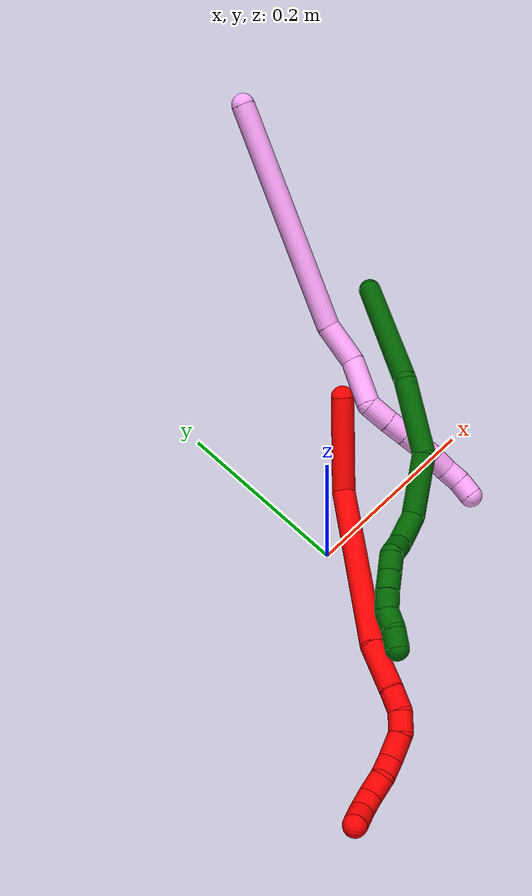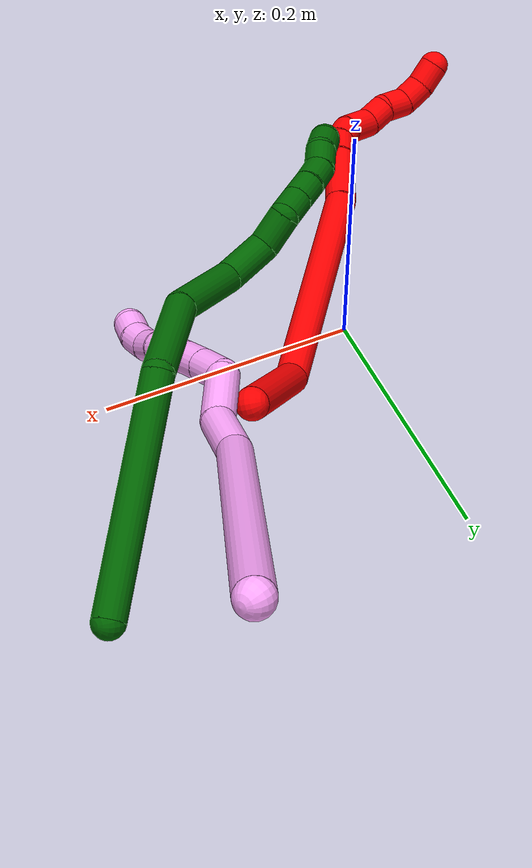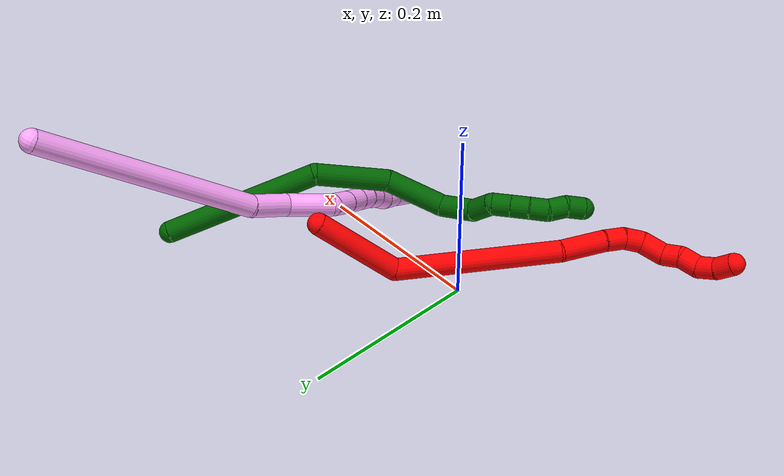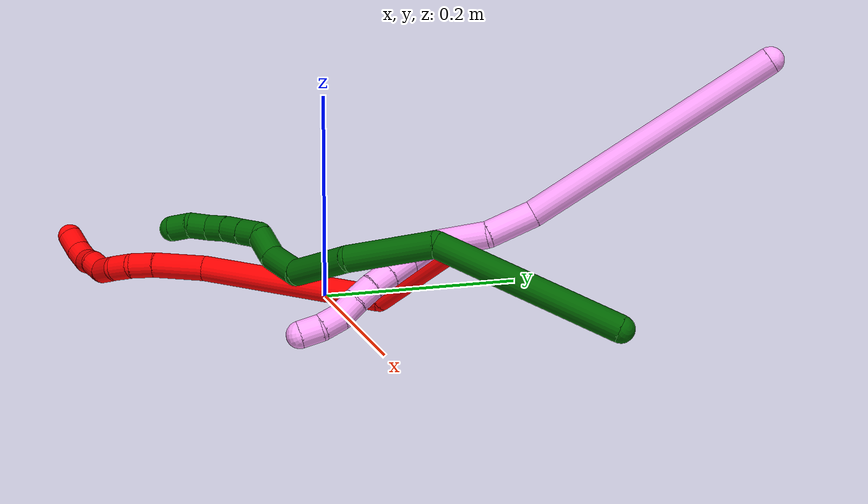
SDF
<sdf version="1.7">
 <world name="default">
  <model name="photoneo_s_sensor">
   <static>1</static>
   <pose>0 0 2 1.57079 1.57079 3.14159</pose>
   <link name="link">
    <inertial><mass>0.1</mass></inertial>
    <sensor name="sensor" type="depth">
     <update_rate>30</update_rate>
     <camera>
      <horizontal_fov>1.22</horizontal_fov>
      <image><width>1920</width><height>1200</height><format>B8G8R8</format></image>
      <clip><near>0.1</near><far>4</far></clip>
      <depth_camera><output>points</output></depth_camera>
     </camera>
     <plugin name="camera_plugin" filename="libgazebo_ros_depth_camera.so">
      <baseline>0.2</baseline>
      <alwaysOn>1</alwaysOn>
      <updateRate>0.0</updateRate>
      <cameraName>camera_ir</cameraName>
      <imageTopicName>/camera/color/image_raw</imageTopicName>
      <cameraInfoTopicName>/camera/color/camera_info</cameraInfoTopicName>
      <depthImageTopicName>/camera/depth/image_raw</depthImageTopicName>
      <depthImageCameraInfoTopicName>/camera/depth/camera_info</depthImageCameraInfoTopicName>
      <pointCloudTopicName>/camera/depth/points</pointCloudTopicName>
      <frameName>fr_optical</frameName>
      <pointCloudCutoff>0.1</pointCloudCutoff>
      <pointCloudCutoffMax>2.0</pointCloudCutoffMax>
      <distortionK1>0</distortionK1>
      <distortionK2>0</distortionK2>
      <distortionK3>0</distortionK3>
      <distortionT1>0</distortionT1>
      <distortionT2>0</distortionT2>
      <CxPrime>0</CxPrime>
      <Cx>0</Cx>
      <Cy>0</Cy>
      <focalLength>0</focalLength>
      <hackBaseline>0</hackBaseline>
     </plugin>
    </sensor>
   </link>
  </model>
  <model name="bin">
   <static>1</static>
   <link name="bottom">
    <collision name="collision-bottom">
     <pose>0 0 -0.01 0 -0 0</pose>
     <geometry><box><size>0.8 0.6 0.02</size></box></geometry>
     <surface>
      <friction><ode><mu>100</mu><mu2>100</mu2></ode></friction>
      <contact><collide_bitmask>65535</collide_bitmask></contact>
     </surface>
    </collision>
   </link>
   <link name="west_wall">
    <collision name="collision-west_wall">
     <pose>-0.41 0 0.1 0 -0 0</pose>
     <geometry><box><size>0.02 0.6 0.2</size></box></geometry>
     <surface>
      <friction><ode><mu>100</mu><mu2>100</mu2></ode></friction>
      <contact><collide_bitmask>65535</collide_bitmask></contact>
     </surface>
    </collision>
   </link>
   <link name="east_wall">
    <collision name="collision-east_wall">
     <pose>0.41 0 0.1 0 -0 0</pose>
     <geometry><box><size>0.02 0.6 0.2</size></box></geometry>
     <surface>
      <friction><ode><mu>100</mu><mu2>100</mu2></ode></friction>
      <contact><collide_bitmask>65535</collide_bitmask></contact>
     </surface>
    </collision>
   </link>
   <link name="south_wall">
    <collision name="collision-south_wall">
     <pose>0 -0.31 0.1 0 -0 0</pose>
     <geometry><box><size>0.8 0.02 0.2</size></box></geometry>
     <surface>
      <friction><ode><mu>100</mu><mu2>100</mu2></ode></friction>
      <contact><collide_bitmask>65535</collide_bitmask></contact>
     </surface>
    </collision>
   </link>
   <link name="north_wall">
    <collision name="collision-north_wall">
     <pose>0 0.31 0.1 0 -0 0</pose>
     <geometry><box><size>0.8 0.02 0.2</size></box></geometry>
     <surface>
      <friction><ode><mu>100</mu><mu2>100</mu2></ode></friction>
      <contact><collide_bitmask>65535</collide_bitmask></contact>
     </surface>
    </collision>
   </link>
  </model>
  <model name="2">
   <static>0</static>
   <link name="2">
    <collision name="collision-cylinder-e_1_1_4">
     <pose>-0.006776 -0.050762 0.006327 1.44679 -0.13169 -0.116331</pose>
     <geometry><cylinder><radius>0.0125</radius><length>0.103202</length></cylinder></geometry>
     <surface>
      <friction><ode><mu>1.16</mu><mu2>1.16</mu2><slip1>0</slip1><slip2>0</slip2></ode></friction>
      <contact><ode><kp>1e+06</kp><kd>1</kd><max_vel>0</max_vel><min_depth>0.001</min_depth></ode></contact>
     </surface>
    </collision>
    <visual name="visual-cylinder-e_1_1_4">
     <pose>-0.006776 -0.050762 0.006327 1.44679 -0.13169 -0.116331</pose>
     <geometry><cylinder><radius>0.0125</radius><length>0.103202</length></cylinder></geometry>
     <material><ambient>1 0 0 1</ambient></material>
    </visual>
    <collision name="collision-cylinder-e_2_4_5">
     <pose>-0.082125 -0.163801 0.004643 1.69874 -0.829389 -0.928073</pose>
     <geometry><cylinder><radius>0.0125</radius><length>0.185957</length></cylinder></geometry>
     <surface>
      <friction><ode><mu>1.16</mu><mu2>1.16</mu2><slip1>0</slip1><slip2>0</slip2></ode></friction>
      <contact><ode><kp>1e+06</kp><kd>1</kd><max_vel>0</max_vel><min_depth>0.001</min_depth></ode></contact>
     </surface>
    </collision>
    <visual name="visual-cylinder-e_2_4_5">
     <pose>-0.082125 -0.163801 0.004643 1.69874 -0.829389 -0.928073</pose>
     <geometry><cylinder><radius>0.0125</radius><length>0.185957</length></cylinder></geometry>
     <material><ambient>1 0 0 1</ambient></material>
    </visual>
    <collision name="collision-cylinder-e_3_5_6">
     <pose>-0.170651 -0.242065 -0.000107 1.36953 -0.885347 -0.738665</pose>
     <geometry><cylinder><radius>0.0125</radius><length>0.051549</length></cylinder></geometry>
     <surface>
      <friction><ode><mu>1.16</mu><mu2>1.16</mu2><slip1>0</slip1><slip2>0</slip2></ode></friction>
      <contact><ode><kp>1e+06</kp><kd>1</kd><max_vel>0</max_vel><min_depth>0.001</min_depth></ode></contact>
     </surface>
    </collision>
    <visual name="visual-cylinder-e_3_5_6">
     <pose>-0.170651 -0.242065 -0.000107 1.36953 -0.885347 -0.738665</pose>
     <geometry><cylinder><radius>0.0125</radius><length>0.051549</length></cylinder></geometry>
     <material><ambient>1 0 0 1</ambient></material>
    </visual>
    <collision name="collision-cylinder-e_4_6_7">
     <pose>-0.198916 -0.266351 0.005111 1.33925 -0.772568 -0.622986</pose>
     <geometry><cylinder><radius>0.0125</radius><length>0.023816</length></cylinder></geometry>
     <surface>
      <friction><ode><mu>1.16</mu><mu2>1.16</mu2><slip1>0</slip1><slip2>0</slip2></ode></friction>
      <contact><ode><kp>1e+06</kp><kd>1</kd><max_vel>0</max_vel><min_depth>0.001</min_depth></ode></contact>
     </surface>
    </collision>
    <visual name="visual-cylinder-e_4_6_7">
     <pose>-0.198916 -0.266351 0.005111 1.33925 -0.772568 -0.622986</pose>
     <geometry><cylinder><radius>0.0125</radius><length>0.023816</length></cylinder></geometry>
     <material><ambient>1 0 0 1</ambient></material>
    </visual>
    <collision name="collision-cylinder-e_5_7_8">
     <pose>-0.212407 -0.284014 0.006461 1.63559 -0.504425 -0.536664</pose>
     <geometry><cylinder><radius>0.0125</radius><length>0.021435</length></cylinder></geometry>
     <surface>
      <friction><ode><mu>1.16</mu><mu2>1.16</mu2><slip1>0</slip1><slip2>0</slip2></ode></friction>
      <contact><ode><kp>1e+06</kp><kd>1</kd><max_vel>0</max_vel><min_depth>0.001</min_depth></ode></contact>
     </surface>
    </collision>
    <visual name="visual-cylinder-e_5_7_8">
     <pose>-0.212407 -0.284014 0.006461 1.63559 -0.504425 -0.536664</pose>
     <geometry><cylinder><radius>0.0125</radius><length>0.021435</length></cylinder></geometry>
     <material><ambient>1 0 0 1</ambient></material>
    </visual>
    <collision name="collision-cylinder-e_6_8_9">
     <pose>-0.220499 -0.306044 0.000545 1.96766 -0.208913 -0.312651</pose>
     <geometry><cylinder><radius>0.0125</radius><length>0.028078</length></cylinder></geometry>
     <surface>
      <friction><ode><mu>1.16</mu><mu2>1.16</mu2><slip1>0</slip1><slip2>0</slip2></ode></friction>
      <contact><ode><kp>1e+06</kp><kd>1</kd><max_vel>0</max_vel><min_depth>0.001</min_depth></ode></contact>
     </surface>
    </collision>
    <visual name="visual-cylinder-e_6_8_9">
     <pose>-0.220499 -0.306044 0.000545 1.96766 -0.208913 -0.312651</pose>
     <geometry><cylinder><radius>0.0125</radius><length>0.028078</length></cylinder></geometry>
     <material><ambient>1 0 0 1</ambient></material>
    </visual>
    <collision name="collision-cylinder-e_7_9_10">
     <pose>-0.228805 -0.324906 -0.01106 2.36417 -0.54821 -1.20331</pose>
     <geometry><cylinder><radius>0.0125</radius><length>0.020702</length></cylinder></geometry>
     <surface>
      <friction><ode><mu>1.16</mu><mu2>1.16</mu2><slip1>0</slip1><slip2>0</slip2></ode></friction>
      <contact><ode><kp>1e+06</kp><kd>1</kd><max_vel>0</max_vel><min_depth>0.001</min_depth></ode></contact>
     </surface>
    </collision>
    <visual name="visual-cylinder-e_7_9_10">
     <pose>-0.228805 -0.324906 -0.01106 2.36417 -0.54821 -1.20331</pose>
     <geometry><cylinder><radius>0.0125</radius><length>0.020702</length></cylinder></geometry>
     <material><ambient>1 0 0 1</ambient></material>
    </visual>
    <collision name="collision-cylinder-e_8_10_11">
     <pose>-0.236248 -0.339937 -0.023804 2.20128 -0.185183 -0.361473</pose>
     <geometry><cylinder><radius>0.0125</radius><length>0.022255</length></cylinder></geometry>
     <surface>
      <friction><ode><mu>1.16</mu><mu2>1.16</mu2><slip1>0</slip1><slip2>0</slip2></ode></friction>
      <contact><ode><kp>1e+06</kp><kd>1</kd><max_vel>0</max_vel><min_depth>0.001</min_depth></ode></contact>
     </surface>
    </collision>
    <visual name="visual-cylinder-e_8_10_11">
     <pose>-0.236248 -0.339937 -0.023804 2.20128 -0.185183 -0.361473</pose>
     <geometry><cylinder><radius>0.0125</radius><length>0.022255</length></cylinder></geometry>
     <material><ambient>1 0 0 1</ambient></material>
    </visual>
    <collision name="collision-cylinder-e_9_11_12">
     <pose>-0.244164 -0.353996 -0.037488 2.51622 -0.581523 -1.49357</pose>
     <geometry><cylinder><radius>0.0125</radius><length>0.021362</length></cylinder></geometry>
     <surface>
      <friction><ode><mu>1.16</mu><mu2>1.16</mu2><slip1>0</slip1><slip2>0</slip2></ode></friction>
      <contact><ode><kp>1e+06</kp><kd>1</kd><max_vel>0</max_vel><min_depth>0.001</min_depth></ode></contact>
     </surface>
    </collision>
    <visual name="visual-cylinder-e_9_11_12">
     <pose>-0.244164 -0.353996 -0.037488 2.51622 -0.581523 -1.49357</pose>
     <geometry><cylinder><radius>0.0125</radius><length>0.021362</length></cylinder></geometry>
     <material><ambient>1 0 0 1</ambient></material>
    </visual>
    <collision name="collision-cylinder-e_10_12_2">
     <pose>-0.257864 -0.361658 -0.051782 2.80914 -0.809352 -2.39493</pose>
     <geometry><cylinder><radius>0.0125</radius><length>0.021645</length></cylinder></geometry>
     <surface>
      <friction><ode><mu>1.16</mu><mu2>1.16</mu2><slip1>0</slip1><slip2>0</slip2></ode></friction>
      <contact><ode><kp>1e+06</kp><kd>1</kd><max_vel>0</max_vel><min_depth>0.001</min_depth></ode></contact>
     </surface>
    </collision>
    <visual name="visual-cylinder-e_10_12_2">
     <pose>-0.257864 -0.361658 -0.051782 2.80914 -0.809352 -2.39493</pose>
     <geometry><cylinder><radius>0.0125</radius><length>0.021645</length></cylinder></geometry>
     <material><ambient>1 0 0 1</ambient></material>
    </visual>
    <collision name="collision-sphere-2">
     <pose>-0.265698 -0.364095 -0.05884 0 -0 0</pose>
     <geometry><sphere><radius>0.0125</radius></sphere></geometry>
     <surface>
      <friction><ode><mu>1.16</mu><mu2>1.16</mu2><slip1>0</slip1><slip2>0</slip2></ode></friction>
      <contact><ode><kp>1e+06</kp><kd>1</kd><max_vel>0</max_vel><min_depth>0.001</min_depth></ode></contact>
     </surface>
    </collision>
    <visual name="visual-sphere-2">
     <pose>-0.265698 -0.364095 -0.05884 0 -0 0</pose>
     <geometry><sphere><radius>0.0125</radius></sphere></geometry>
     <material><ambient>1 0 0 1</ambient></material>
    </visual>
    <collision name="collision-sphere-12">
     <pose>-0.250031 -0.359221 -0.044724 0 -0 0</pose>
     <geometry><sphere><radius>0.0125</radius></sphere></geometry>
     <surface>
      <friction><ode><mu>1.16</mu><mu2>1.16</mu2><slip1>0</slip1><slip2>0</slip2></ode></friction>
      <contact><ode><kp>1e+06</kp><kd>1</kd><max_vel>0</max_vel><min_depth>0.001</min_depth></ode></contact>
     </surface>
    </collision>
    <visual name="visual-sphere-12">
     <pose>-0.250031 -0.359221 -0.044724 0 -0 0</pose>
     <geometry><sphere><radius>0.0125</radius></sphere></geometry>
     <material><ambient>1 0 0 1</ambient></material>
    </visual>
    <collision name="collision-sphere-11">
     <pose>-0.238297 -0.348772 -0.030252 0 -0 0</pose>
     <geometry><sphere><radius>0.0125</radius></sphere></geometry>
     <surface>
      <friction><ode><mu>1.16</mu><mu2>1.16</mu2><slip1>0</slip1><slip2>0</slip2></ode></friction>
      <contact><ode><kp>1e+06</kp><kd>1</kd><max_vel>0</max_vel><min_depth>0.001</min_depth></ode></contact>
     </surface>
    </collision>
    <visual name="visual-sphere-11">
     <pose>-0.238297 -0.348772 -0.030252 0 -0 0</pose>
     <geometry><sphere><radius>0.0125</radius></sphere></geometry>
     <material><ambient>1 0 0 1</ambient></material>
    </visual>
    <collision name="collision-sphere-10">
     <pose>-0.234199 -0.331103 -0.017356 0 -0 0</pose>
     <geometry><sphere><radius>0.0125</radius></sphere></geometry>
     <surface>
      <friction><ode><mu>1.16</mu><mu2>1.16</mu2><slip1>0</slip1><slip2>0</slip2></ode></friction>
      <contact><ode><kp>1e+06</kp><kd>1</kd><max_vel>0</max_vel><min_depth>0.001</min_depth></ode></contact>
     </surface>
    </collision>
    <visual name="visual-sphere-10">
     <pose>-0.234199 -0.331103 -0.017356 0 -0 0</pose>
     <geometry><sphere><radius>0.0125</radius></sphere></geometry>
     <material><ambient>1 0 0 1</ambient></material>
    </visual>
    <collision name="collision-sphere-9">
     <pose>-0.22341 -0.31871 -0.004764 0 -0 0</pose>
     <geometry><sphere><radius>0.0125</radius></sphere></geometry>
     <surface>
      <friction><ode><mu>1.16</mu><mu2>1.16</mu2><slip1>0</slip1><slip2>0</slip2></ode></friction>
      <contact><ode><kp>1e+06</kp><kd>1</kd><max_vel>0</max_vel><min_depth>0.001</min_depth></ode></contact>
     </surface>
    </collision>
    <visual name="visual-sphere-9">
     <pose>-0.22341 -0.31871 -0.004764 0 -0 0</pose>
     <geometry><sphere><radius>0.0125</radius></sphere></geometry>
     <material><ambient>1 0 0 1</ambient></material>
    </visual>
    <collision name="collision-sphere-4">
     <pose>-0.013551 -0.101523 0.012655 0 -0 0</pose>
     <geometry><sphere><radius>0.0125</radius></sphere></geometry>
     <surface>
      <friction><ode><mu>1.16</mu><mu2>1.16</mu2><slip1>0</slip1><slip2>0</slip2></ode></friction>
      <contact><ode><kp>1e+06</kp><kd>1</kd><max_vel>0</max_vel><min_depth>0.001</min_depth></ode></contact>
     </surface>
    </collision>
    <visual name="visual-sphere-4">
     <pose>-0.013551 -0.101523 0.012655 0 -0 0</pose>
     <geometry><sphere><radius>0.0125</radius></sphere></geometry>
     <material><ambient>1 0 0 1</ambient></material>
    </visual>
    <collision name="collision-sphere-1">
     <geometry><sphere><radius>0.0125</radius></sphere></geometry>
     <surface>
      <friction><ode><mu>1.16</mu><mu2>1.16</mu2><slip1>0</slip1><slip2>0</slip2></ode></friction>
      <contact><ode><kp>1e+06</kp><kd>1</kd><max_vel>0</max_vel><min_depth>0.001</min_depth></ode></contact>
     </surface>
    </collision>
    <visual name="visual-sphere-1">
     <geometry><sphere><radius>0.0125</radius></sphere></geometry>
     <material><ambient>1 0 0 1</ambient></material>
    </visual>
    <collision name="collision-sphere-8">
     <pose>-0.217587 -0.293378 0.005853 0 -0 0</pose>
     <geometry><sphere><radius>0.0125</radius></sphere></geometry>
     <surface>
      <friction><ode><mu>1.16</mu><mu2>1.16</mu2><slip1>0</slip1><slip2>0</slip2></ode></friction>
      <contact><ode><kp>1e+06</kp><kd>1</kd><max_vel>0</max_vel><min_depth>0.001</min_depth></ode></contact>
     </surface>
    </collision>
    <visual name="visual-sphere-8">
     <pose>-0.217587 -0.293378 0.005853 0 -0 0</pose>
     <geometry><sphere><radius>0.0125</radius></sphere></geometry>
     <material><ambient>1 0 0 1</ambient></material>
    </visual>
    <collision name="collision-sphere-5">
     <pose>-0.150698 -0.226078 -0.003369 0 -0 0</pose>
     <geometry><sphere><radius>0.0125</radius></sphere></geometry>
     <surface>
      <friction><ode><mu>1.16</mu><mu2>1.16</mu2><slip1>0</slip1><slip2>0</slip2></ode></friction>
      <contact><ode><kp>1e+06</kp><kd>1</kd><max_vel>0</max_vel><min_depth>0.001</min_depth></ode></contact>
     </surface>
    </collision>
    <visual name="visual-sphere-5">
     <pose>-0.150698 -0.226078 -0.003369 0 -0 0</pose>
     <geometry><sphere><radius>0.0125</radius></sphere></geometry>
     <material><ambient>1 0 0 1</ambient></material>
    </visual>
    <collision name="collision-sphere-6">
     <pose>-0.190604 -0.258051 0.003154 0 -0 0</pose>
     <geometry><sphere><radius>0.0125</radius></sphere></geometry>
     <surface>
      <friction><ode><mu>1.16</mu><mu2>1.16</mu2><slip1>0</slip1><slip2>0</slip2></ode></friction>
      <contact><ode><kp>1e+06</kp><kd>1</kd><max_vel>0</max_vel><min_depth>0.001</min_depth></ode></contact>
     </surface>
    </collision>
    <visual name="visual-sphere-6">
     <pose>-0.190604 -0.258051 0.003154 0 -0 0</pose>
     <geometry><sphere><radius>0.0125</radius></sphere></geometry>
     <material><ambient>1 0 0 1</ambient></material>
    </visual>
    <collision name="collision-sphere-7">
     <pose>-0.207227 -0.274651 0.007068 0 -0 0</pose>
     <geometry><sphere><radius>0.0125</radius></sphere></geometry>
     <surface>
      <friction><ode><mu>1.16</mu><mu2>1.16</mu2><slip1>0</slip1><slip2>0</slip2></ode></friction>
      <contact><ode><kp>1e+06</kp><kd>1</kd><max_vel>0</max_vel><min_depth>0.001</min_depth></ode></contact>
     </surface>
    </collision>
    <visual name="visual-sphere-7">
     <pose>-0.207227 -0.274651 0.007068 0 -0 0</pose>
     <geometry><sphere><radius>0.0125</radius></sphere></geometry>
     <material><ambient>1 0 0 1</ambient></material>
    </visual>
    <inertial>
     <pose>-0.122081 -0.197765 -0.001788 0 -0 0</pose>
     <mass>0.5</mass>
     <inertia><ixx>-1.1e-05</ixx><ixy>0</ixy><ixz>0</ixz><iyy>-4.5e-05</iyy><iyz>0</iyz><izz>0.0009</izz></inertia>
    </inertial>
   </link>
   <pose>0.121318 0.09525 0.073827 2.16063 0.683182 1.38052</pose>
  </model>
  <model name="4">
   <static>0</static>
   <link name="4">
    <collision name="collision-cylinder-e_1_1_4">
     <pose>0.011197 -0.081528 -0.094434 2.42941 0.089507 0.239652</pose>
     <geometry><cylinder><radius>0.0125</radius><length>0.25052</length></cylinder></geometry>
     <surface>
      <friction><ode><mu>1.16</mu><mu2>1.16</mu2><slip1>0</slip1><slip2>0</slip2></ode></friction>
      <contact><ode><kp>1e+06</kp><kd>1</kd><max_vel>0</max_vel><min_depth>0.001</min_depth></ode></contact>
     </surface>
    </collision>
    <visual name="visual-cylinder-e_1_1_4">
     <pose>0.011197 -0.081528 -0.094434 2.42941 0.089507 0.239652</pose>
     <geometry><cylinder><radius>0.0125</radius><length>0.25052</length></cylinder></geometry>
     <material><ambient>1 0.65098 0.996078 1</ambient></material>
    </visual>
    <collision name="collision-cylinder-e_2_4_5">
     <pose>0.019633 -0.180846 -0.202863 2.23734 -0.121382 -0.248937</pose>
     <geometry><cylinder><radius>0.0125</radius><length>0.045604</length></cylinder></geometry>
     <surface>
      <friction><ode><mu>1.16</mu><mu2>1.16</mu2><slip1>0</slip1><slip2>0</slip2></ode></friction>
      <contact><ode><kp>1e+06</kp><kd>1</kd><max_vel>0</max_vel><min_depth>0.001</min_depth></ode></contact>
     </surface>
    </collision>
    <visual name="visual-cylinder-e_2_4_5">
     <pose>0.019633 -0.180846 -0.202863 2.23734 -0.121382 -0.248937</pose>
     <geometry><cylinder><radius>0.0125</radius><length>0.045604</length></cylinder></geometry>
     <material><ambient>1 0.65098 0.996078 1</ambient></material>
    </visual>
    <collision name="collision-cylinder-e_3_5_6">
     <pose>0.00961 -0.211918 -0.238272 2.58642 -0.280551 -0.92016</pose>
     <geometry><cylinder><radius>0.0125</radius><length>0.052449</length></cylinder></geometry>
     <surface>
      <friction><ode><mu>1.16</mu><mu2>1.16</mu2><slip1>0</slip1><slip2>0</slip2></ode></friction>
      <contact><ode><kp>1e+06</kp><kd>1</kd><max_vel>0</max_vel><min_depth>0.001</min_depth></ode></contact>
     </surface>
    </collision>
    <visual name="visual-cylinder-e_3_5_6">
     <pose>0.00961 -0.211918 -0.238272 2.58642 -0.280551 -0.92016</pose>
     <geometry><cylinder><radius>0.0125</radius><length>0.052449</length></cylinder></geometry>
     <material><ambient>1 0.65098 0.996078 1</ambient></material>
    </visual>
    <collision name="collision-cylinder-e_4_6_7">
     <pose>0.001897 -0.23809 -0.264671 1.93977 -0.032718 -0.047725</pose>
     <geometry><cylinder><radius>0.0125</radius><length>0.027654</length></cylinder></geometry>
     <surface>
      <friction><ode><mu>1.16</mu><mu2>1.16</mu2><slip1>0</slip1><slip2>0</slip2></ode></friction>
      <contact><ode><kp>1e+06</kp><kd>1</kd><max_vel>0</max_vel><min_depth>0.001</min_depth></ode></contact>
     </surface>
    </collision>
    <visual name="visual-cylinder-e_4_6_7">
     <pose>0.001897 -0.23809 -0.264671 1.93977 -0.032718 -0.047725</pose>
     <geometry><cylinder><radius>0.0125</radius><length>0.027654</length></cylinder></geometry>
     <material><ambient>1 0.65098 0.996078 1</ambient></material>
    </visual>
    <collision name="collision-cylinder-e_5_7_8">
     <pose>0.001043 -0.262063 -0.273422 1.89843 -0.0343 -0.04788</pose>
     <geometry><cylinder><radius>0.0125</radius><length>0.023426</length></cylinder></geometry>
     <surface>
      <friction><ode><mu>1.16</mu><mu2>1.16</mu2><slip1>0</slip1><slip2>0</slip2></ode></friction>
      <contact><ode><kp>1e+06</kp><kd>1</kd><max_vel>0</max_vel><min_depth>0.001</min_depth></ode></contact>
     </surface>
    </collision>
    <visual name="visual-cylinder-e_5_7_8">
     <pose>0.001043 -0.262063 -0.273422 1.89843 -0.0343 -0.04788</pose>
     <geometry><cylinder><radius>0.0125</radius><length>0.023426</length></cylinder></geometry>
     <material><ambient>1 0.65098 0.996078 1</ambient></material>
    </visual>
    <collision name="collision-cylinder-e_6_8_9">
     <pose>0.000302 -0.282676 -0.280408 1.89653 -0.03368 -0.046921</pose>
     <geometry><cylinder><radius>0.0125</radius><length>0.02013</length></cylinder></geometry>
     <surface>
      <friction><ode><mu>1.16</mu><mu2>1.16</mu2><slip1>0</slip1><slip2>0</slip2></ode></friction>
      <contact><ode><kp>1e+06</kp><kd>1</kd><max_vel>0</max_vel><min_depth>0.001</min_depth></ode></contact>
     </surface>
    </collision>
    <visual name="visual-cylinder-e_6_8_9">
     <pose>0.000302 -0.282676 -0.280408 1.89653 -0.03368 -0.046921</pose>
     <geometry><cylinder><radius>0.0125</radius><length>0.02013</length></cylinder></geometry>
     <material><ambient>1 0.65098 0.996078 1</ambient></material>
    </visual>
    <collision name="collision-cylinder-e_7_9_10">
     <pose>0.000714 -0.301673 -0.286831 1.89722 0.074998 0.104523</pose>
     <geometry><cylinder><radius>0.0125</radius><length>0.020043</length></cylinder></geometry>
     <surface>
      <friction><ode><mu>1.16</mu><mu2>1.16</mu2><slip1>0</slip1><slip2>0</slip2></ode></friction>
      <contact><ode><kp>1e+06</kp><kd>1</kd><max_vel>0</max_vel><min_depth>0.001</min_depth></ode></contact>
     </surface>
    </collision>
    <visual name="visual-cylinder-e_7_9_10">
     <pose>0.000714 -0.301673 -0.286831 1.89722 0.074998 0.104523</pose>
     <geometry><cylinder><radius>0.0125</radius><length>0.020043</length></cylinder></geometry>
     <material><ambient>1 0.65098 0.996078 1</ambient></material>
    </visual>
    <collision name="collision-cylinder-e_8_10_11">
     <pose>0.003274 -0.320191 -0.293984 1.98206 0.181147 0.27563</pose>
     <geometry><cylinder><radius>0.0125</radius><length>0.02008</length></cylinder></geometry>
     <surface>
      <friction><ode><mu>1.16</mu><mu2>1.16</mu2><slip1>0</slip1><slip2>0</slip2></ode></friction>
      <contact><ode><kp>1e+06</kp><kd>1</kd><max_vel>0</max_vel><min_depth>0.001</min_depth></ode></contact>
     </surface>
    </collision>
    <visual name="visual-cylinder-e_8_10_11">
     <pose>0.003274 -0.320191 -0.293984 1.98206 0.181147 0.27563</pose>
     <geometry><cylinder><radius>0.0125</radius><length>0.02008</length></cylinder></geometry>
     <material><ambient>1 0.65098 0.996078 1</ambient></material>
    </visual>
    <collision name="collision-cylinder-e_9_11_12">
     <pose>0.003888 -0.338396 -0.301874 1.97746 -0.119299 -0.18099</pose>
     <geometry><cylinder><radius>0.0125</radius><length>0.020073</length></cylinder></geometry>
     <surface>
      <friction><ode><mu>1.16</mu><mu2>1.16</mu2><slip1>0</slip1><slip2>0</slip2></ode></friction>
      <contact><ode><kp>1e+06</kp><kd>1</kd><max_vel>0</max_vel><min_depth>0.001</min_depth></ode></contact>
     </surface>
    </collision>
    <visual name="visual-cylinder-e_9_11_12">
     <pose>0.003888 -0.338396 -0.301874 1.97746 -0.119299 -0.18099</pose>
     <geometry><cylinder><radius>0.0125</radius><length>0.020073</length></cylinder></geometry>
     <material><ambient>1 0.65098 0.996078 1</ambient></material>
    </visual>
    <collision name="collision-cylinder-e_10_12_2">
     <pose>0.000308 -0.355284 -0.311703 2.2213 -0.240677 -0.478605</pose>
     <geometry><cylinder><radius>0.0125</radius><length>0.02002</length></cylinder></geometry>
     <surface>
      <friction><ode><mu>1.16</mu><mu2>1.16</mu2><slip1>0</slip1><slip2>0</slip2></ode></friction>
      <contact><ode><kp>1e+06</kp><kd>1</kd><max_vel>0</max_vel><min_depth>0.001</min_depth></ode></contact>
     </surface>
    </collision>
    <visual name="visual-cylinder-e_10_12_2">
     <pose>0.000308 -0.355284 -0.311703 2.2213 -0.240677 -0.478605</pose>
     <geometry><cylinder><radius>0.0125</radius><length>0.02002</length></cylinder></geometry>
     <material><ambient>1 0.65098 0.996078 1</ambient></material>
    </visual>
    <collision name="collision-sphere-2">
     <pose>-0.002078 -0.363021 -0.31759 0 -0 0</pose>
     <geometry><sphere><radius>0.0125</radius></sphere></geometry>
     <surface>
      <friction><ode><mu>1.16</mu><mu2>1.16</mu2><slip1>0</slip1><slip2>0</slip2></ode></friction>
      <contact><ode><kp>1e+06</kp><kd>1</kd><max_vel>0</max_vel><min_depth>0.001</min_depth></ode></contact>
     </surface>
    </collision>
    <visual name="visual-sphere-2">
     <pose>-0.002078 -0.363021 -0.31759 0 -0 0</pose>
     <geometry><sphere><radius>0.0125</radius></sphere></geometry>
     <material><ambient>1 0.65098 0.996078 1</ambient></material>
    </visual>
    <collision name="collision-sphere-12">
     <pose>0.002694 -0.347548 -0.305815 0 -0 0</pose>
     <geometry><sphere><radius>0.0125</radius></sphere></geometry>
     <surface>
      <friction><ode><mu>1.16</mu><mu2>1.16</mu2><slip1>0</slip1><slip2>0</slip2></ode></friction>
      <contact><ode><kp>1e+06</kp><kd>1</kd><max_vel>0</max_vel><min_depth>0.001</min_depth></ode></contact>
     </surface>
    </collision>
    <visual name="visual-sphere-12">
     <pose>0.002694 -0.347548 -0.305815 0 -0 0</pose>
     <geometry><sphere><radius>0.0125</radius></sphere></geometry>
     <material><ambient>1 0.65098 0.996078 1</ambient></material>
    </visual>
    <collision name="collision-sphere-11">
     <pose>0.005083 -0.329243 -0.297932 0 -0 0</pose>
     <geometry><sphere><radius>0.0125</radius></sphere></geometry>
     <surface>
      <friction><ode><mu>1.16</mu><mu2>1.16</mu2><slip1>0</slip1><slip2>0</slip2></ode></friction>
      <contact><ode><kp>1e+06</kp><kd>1</kd><max_vel>0</max_vel><min_depth>0.001</min_depth></ode></contact>
     </surface>
    </collision>
    <visual name="visual-sphere-11">
     <pose>0.005083 -0.329243 -0.297932 0 -0 0</pose>
     <geometry><sphere><radius>0.0125</radius></sphere></geometry>
     <material><ambient>1 0.65098 0.996078 1</ambient></material>
    </visual>
    <collision name="collision-sphere-10">
     <pose>0.001465 -0.311139 -0.290036 0 -0 0</pose>
     <geometry><sphere><radius>0.0125</radius></sphere></geometry>
     <surface>
      <friction><ode><mu>1.16</mu><mu2>1.16</mu2><slip1>0</slip1><slip2>0</slip2></ode></friction>
      <contact><ode><kp>1e+06</kp><kd>1</kd><max_vel>0</max_vel><min_depth>0.001</min_depth></ode></contact>
     </surface>
    </collision>
    <visual name="visual-sphere-10">
     <pose>0.001465 -0.311139 -0.290036 0 -0 0</pose>
     <geometry><sphere><radius>0.0125</radius></sphere></geometry>
     <material><ambient>1 0.65098 0.996078 1</ambient></material>
    </visual>
    <collision name="collision-sphere-9">
     <pose>-3.7e-05 -0.292207 -0.283627 0 -0 0</pose>
     <geometry><sphere><radius>0.0125</radius></sphere></geometry>
     <surface>
      <friction><ode><mu>1.16</mu><mu2>1.16</mu2><slip1>0</slip1><slip2>0</slip2></ode></friction>
      <contact><ode><kp>1e+06</kp><kd>1</kd><max_vel>0</max_vel><min_depth>0.001</min_depth></ode></contact>
     </surface>
    </collision>
    <visual name="visual-sphere-9">
     <pose>-3.7e-05 -0.292207 -0.283627 0 -0 0</pose>
     <geometry><sphere><radius>0.0125</radius></sphere></geometry>
     <material><ambient>1 0.65098 0.996078 1</ambient></material>
    </visual>
    <collision name="collision-sphere-4">
     <pose>0.022393 -0.163057 -0.188868 0 -0 0</pose>
     <geometry><sphere><radius>0.0125</radius></sphere></geometry>
     <surface>
      <friction><ode><mu>1.16</mu><mu2>1.16</mu2><slip1>0</slip1><slip2>0</slip2></ode></friction>
      <contact><ode><kp>1e+06</kp><kd>1</kd><max_vel>0</max_vel><min_depth>0.001</min_depth></ode></contact>
     </surface>
    </collision>
    <visual name="visual-sphere-4">
     <pose>0.022393 -0.163057 -0.188868 0 -0 0</pose>
     <geometry><sphere><radius>0.0125</radius></sphere></geometry>
     <material><ambient>1 0.65098 0.996078 1</ambient></material>
    </visual>
    <collision name="collision-sphere-1">
     <geometry><sphere><radius>0.0125</radius></sphere></geometry>
     <surface>
      <friction><ode><mu>1.16</mu><mu2>1.16</mu2><slip1>0</slip1><slip2>0</slip2></ode></friction>
      <contact><ode><kp>1e+06</kp><kd>1</kd><max_vel>0</max_vel><min_depth>0.001</min_depth></ode></contact>
     </surface>
    </collision>
    <visual name="visual-sphere-1">
     <geometry><sphere><radius>0.0125</radius></sphere></geometry>
     <material><ambient>1 0.65098 0.996078 1</ambient></material>
    </visual>
    <collision name="collision-sphere-8">
     <pose>0.000641 -0.273146 -0.277189 0 -0 0</pose>
     <geometry><sphere><radius>0.0125</radius></sphere></geometry>
     <surface>
      <friction><ode><mu>1.16</mu><mu2>1.16</mu2><slip1>0</slip1><slip2>0</slip2></ode></friction>
      <contact><ode><kp>1e+06</kp><kd>1</kd><max_vel>0</max_vel><min_depth>0.001</min_depth></ode></contact>
     </surface>
    </collision>
    <visual name="visual-sphere-8">
     <pose>0.000641 -0.273146 -0.277189 0 -0 0</pose>
     <geometry><sphere><radius>0.0125</radius></sphere></geometry>
     <material><ambient>1 0.65098 0.996078 1</ambient></material>
    </visual>
    <collision name="collision-sphere-5">
     <pose>0.016872 -0.198636 -0.216857 0 -0 0</pose>
     <geometry><sphere><radius>0.0125</radius></sphere></geometry>
     <surface>
      <friction><ode><mu>1.16</mu><mu2>1.16</mu2><slip1>0</slip1><slip2>0</slip2></ode></friction>
      <contact><ode><kp>1e+06</kp><kd>1</kd><max_vel>0</max_vel><min_depth>0.001</min_depth></ode></contact>
     </surface>
    </collision>
    <visual name="visual-sphere-5">
     <pose>0.016872 -0.198636 -0.216857 0 -0 0</pose>
     <geometry><sphere><radius>0.0125</radius></sphere></geometry>
     <material><ambient>1 0.65098 0.996078 1</ambient></material>
    </visual>
    <collision name="collision-sphere-6">
     <pose>0.002349 -0.225201 -0.259686 0 -0 0</pose>
     <geometry><sphere><radius>0.0125</radius></sphere></geometry>
     <surface>
      <friction><ode><mu>1.16</mu><mu2>1.16</mu2><slip1>0</slip1><slip2>0</slip2></ode></friction>
      <contact><ode><kp>1e+06</kp><kd>1</kd><max_vel>0</max_vel><min_depth>0.001</min_depth></ode></contact>
     </surface>
    </collision>
    <visual name="visual-sphere-6">
     <pose>0.002349 -0.225201 -0.259686 0 -0 0</pose>
     <geometry><sphere><radius>0.0125</radius></sphere></geometry>
     <material><ambient>1 0.65098 0.996078 1</ambient></material>
    </visual>
    <collision name="collision-sphere-7">
     <pose>0.001445 -0.250979 -0.269655 0 -0 0</pose>
     <geometry><sphere><radius>0.0125</radius></sphere></geometry>
     <surface>
      <friction><ode><mu>1.16</mu><mu2>1.16</mu2><slip1>0</slip1><slip2>0</slip2></ode></friction>
      <contact><ode><kp>1e+06</kp><kd>1</kd><max_vel>0</max_vel><min_depth>0.001</min_depth></ode></contact>
     </surface>
    </collision>
    <visual name="visual-sphere-7">
     <pose>0.001445 -0.250979 -0.269655 0 -0 0</pose>
     <geometry><sphere><radius>0.0125</radius></sphere></geometry>
     <material><ambient>1 0.65098 0.996078 1</ambient></material>
    </visual>
    <inertial>
     <pose>0.008903 -0.169163 -0.177455 0 -0 0</pose>
     <mass>0.5</mass>
     <inertia>
      <ixx>0.001605</ixx>
      <ixy>0</ixy>
      <ixz>0</ixz>
      <iyy>-0.000698</iyy>
      <iyz>0</iyz>
      <izz>0.000748</izz>
     </inertia>
    </inertial>
   </link>
   <pose>0.231167 0.348058 0.249336 0.883813 1.05054 1.42623</pose>
  </model>
  <model name="6">
   <static>0</static>
   <link name="6">
    <collision name="collision-cylinder-e_1_1_4">
     <pose>-0.022765 -0.075923 0.04058 1.07994 -0.258518 -0.155507</pose>
     <geometry><cylinder><radius>0.0125</radius><length>0.178093</length></cylinder></geometry>
     <surface>
      <friction><ode><mu>1.16</mu><mu2>1.16</mu2><slip1>0</slip1><slip2>0</slip2></ode></friction>
      <contact><ode><kp>1e+06</kp><kd>1</kd><max_vel>0</max_vel><min_depth>0.001</min_depth></ode></contact>
     </surface>
    </collision>
    <visual name="visual-cylinder-e_1_1_4">
     <pose>-0.022765 -0.075923 0.04058 1.07994 -0.258518 -0.155507</pose>
     <geometry><cylinder><radius>0.0125</radius><length>0.178093</length></cylinder></geometry>
     <material><ambient>0 0.392157 0.003922 1</ambient></material>
    </visual>
    <collision name="collision-cylinder-e_2_4_5">
     <pose>-0.068851 -0.169673 0.111419 0.532422 -0.586196 -0.164216</pose>
     <geometry><cylinder><radius>0.0125</radius><length>0.084316</length></cylinder></geometry>
     <surface>
      <friction><ode><mu>1.16</mu><mu2>1.16</mu2><slip1>0</slip1><slip2>0</slip2></ode></friction>
      <contact><ode><kp>1e+06</kp><kd>1</kd><max_vel>0</max_vel><min_depth>0.001</min_depth></ode></contact>
     </surface>
    </collision>
    <visual name="visual-cylinder-e_2_4_5">
     <pose>-0.068851 -0.169673 0.111419 0.532422 -0.586196 -0.164216</pose>
     <geometry><cylinder><radius>0.0125</radius><length>0.084316</length></cylinder></geometry>
     <material><ambient>0 0.392157 0.003922 1</ambient></material>
    </visual>
    <collision name="collision-cylinder-e_3_5_6">
     <pose>-0.101049 -0.194881 0.173347 0.228962 -0.26649 -0.030822</pose>
     <geometry><cylinder><radius>0.0125</radius><length>0.067415</length></cylinder></geometry>
     <surface>
      <friction><ode><mu>1.16</mu><mu2>1.16</mu2><slip1>0</slip1><slip2>0</slip2></ode></friction>
      <contact><ode><kp>1e+06</kp><kd>1</kd><max_vel>0</max_vel><min_depth>0.001</min_depth></ode></contact>
     </surface>
    </collision>
    <visual name="visual-cylinder-e_3_5_6">
     <pose>-0.101049 -0.194881 0.173347 0.228962 -0.26649 -0.030822</pose>
     <geometry><cylinder><radius>0.0125</radius><length>0.067415</length></cylinder></geometry>
     <material><ambient>0 0.392157 0.003922 1</ambient></material>
    </visual>
    <collision name="collision-cylinder-e_4_6_7">
     <pose>-0.106685 -0.213664 0.220916 0.622117 0.164164 0.052885</pose>
     <geometry><cylinder><radius>0.0125</radius><length>0.039665</length></cylinder></geometry>
     <surface>
      <friction><ode><mu>1.16</mu><mu2>1.16</mu2><slip1>0</slip1><slip2>0</slip2></ode></friction>
      <contact><ode><kp>1e+06</kp><kd>1</kd><max_vel>0</max_vel><min_depth>0.001</min_depth></ode></contact>
     </surface>
    </collision>
    <visual name="visual-cylinder-e_4_6_7">
     <pose>-0.106685 -0.213664 0.220916 0.622117 0.164164 0.052885</pose>
     <geometry><cylinder><radius>0.0125</radius><length>0.039665</length></cylinder></geometry>
     <material><ambient>0 0.392157 0.003922 1</ambient></material>
    </visual>
    <collision name="collision-cylinder-e_5_7_8">
     <pose>-0.098543 -0.236734 0.242972 1.08534 0.35568 0.215945</pose>
     <geometry><cylinder><radius>0.0125</radius><length>0.028146</length></cylinder></geometry>
     <surface>
      <friction><ode><mu>1.16</mu><mu2>1.16</mu2><slip1>0</slip1><slip2>0</slip2></ode></friction>
      <contact><ode><kp>1e+06</kp><kd>1</kd><max_vel>0</max_vel><min_depth>0.001</min_depth></ode></contact>
     </surface>
    </collision>
    <visual name="visual-cylinder-e_5_7_8">
     <pose>-0.098543 -0.236734 0.242972 1.08534 0.35568 0.215945</pose>
     <geometry><cylinder><radius>0.0125</radius><length>0.028146</length></cylinder></geometry>
     <material><ambient>0 0.392157 0.003922 1</ambient></material>
    </visual>
    <collision name="collision-cylinder-e_6_8_9">
     <pose>-0.095506 -0.254129 0.257629 0.592831 -0.179908 -0.055081</pose>
     <geometry><cylinder><radius>0.0125</radius><length>0.020837</length></cylinder></geometry>
     <surface>
      <friction><ode><mu>1.16</mu><mu2>1.16</mu2><slip1>0</slip1><slip2>0</slip2></ode></friction>
      <contact><ode><kp>1e+06</kp><kd>1</kd><max_vel>0</max_vel><min_depth>0.001</min_depth></ode></contact>
     </surface>
    </collision>
    <visual name="visual-cylinder-e_6_8_9">
     <pose>-0.095506 -0.254129 0.257629 0.592831 -0.179908 -0.055081</pose>
     <geometry><cylinder><radius>0.0125</radius><length>0.020837</length></cylinder></geometry>
     <material><ambient>0 0.392157 0.003922 1</ambient></material>
    </visual>
    <collision name="collision-cylinder-e_7_9_10">
     <pose>-0.099025 -0.26552 0.274484 0.595818 -0.162422 -0.049971</pose>
     <geometry><cylinder><radius>0.0125</radius><length>0.020456</length></cylinder></geometry>
     <surface>
      <friction><ode><mu>1.16</mu><mu2>1.16</mu2><slip1>0</slip1><slip2>0</slip2></ode></friction>
      <contact><ode><kp>1e+06</kp><kd>1</kd><max_vel>0</max_vel><min_depth>0.001</min_depth></ode></contact>
     </surface>
    </collision>
    <visual name="visual-cylinder-e_7_9_10">
     <pose>-0.099025 -0.26552 0.274484 0.595818 -0.162422 -0.049971</pose>
     <geometry><cylinder><radius>0.0125</radius><length>0.020456</length></cylinder></geometry>
     <material><ambient>0 0.392157 0.003922 1</ambient></material>
    </visual>
    <collision name="collision-cylinder-e_8_10_11">
     <pose>-0.103549 -0.276574 0.29135 0.564465 -0.277524 -0.080951</pose>
     <geometry><cylinder><radius>0.0125</radius><length>0.02095</length></cylinder></geometry>
     <surface>
      <friction><ode><mu>1.16</mu><mu2>1.16</mu2><slip1>0</slip1><slip2>0</slip2></ode></friction>
      <contact><ode><kp>1e+06</kp><kd>1</kd><max_vel>0</max_vel><min_depth>0.001</min_depth></ode></contact>
     </surface>
    </collision>
    <visual name="visual-cylinder-e_8_10_11">
     <pose>-0.103549 -0.276574 0.29135 0.564465 -0.277524 -0.080951</pose>
     <geometry><cylinder><radius>0.0125</radius><length>0.02095</length></cylinder></geometry>
     <material><ambient>0 0.392157 0.003922 1</ambient></material>
    </visual>
    <collision name="collision-cylinder-e_9_11_12">
     <pose>-0.111282 -0.288788 0.305391 0.889767 -0.505716 -0.245144</pose>
     <geometry><cylinder><radius>0.0125</radius><length>0.020081</length></cylinder></geometry>
     <surface>
      <friction><ode><mu>1.16</mu><mu2>1.16</mu2><slip1>0</slip1><slip2>0</slip2></ode></friction>
      <contact><ode><kp>1e+06</kp><kd>1</kd><max_vel>0</max_vel><min_depth>0.001</min_depth></ode></contact>
     </surface>
    </collision>
    <visual name="visual-cylinder-e_9_11_12">
     <pose>-0.111282 -0.288788 0.305391 0.889767 -0.505716 -0.245144</pose>
     <geometry><cylinder><radius>0.0125</radius><length>0.020081</length></cylinder></geometry>
     <material><ambient>0 0.392157 0.003922 1</ambient></material>
    </visual>
    <collision name="collision-cylinder-e_10_12_2">
     <pose>-0.121401 -0.299729 0.318394 0.503636 -0.552043 -0.145492</pose>
     <geometry><cylinder><radius>0.0125</radius><length>0.020041</length></cylinder></geometry>
     <surface>
      <friction><ode><mu>1.16</mu><mu2>1.16</mu2><slip1>0</slip1><slip2>0</slip2></ode></friction>
      <contact><ode><kp>1e+06</kp><kd>1</kd><max_vel>0</max_vel><min_depth>0.001</min_depth></ode></contact>
     </surface>
    </collision>
    <visual name="visual-cylinder-e_10_12_2">
     <pose>-0.121401 -0.299729 0.318394 0.503636 -0.552043 -0.145492</pose>
     <geometry><cylinder><radius>0.0125</radius><length>0.020041</length></cylinder></geometry>
     <material><ambient>0 0.392157 0.003922 1</ambient></material>
    </visual>
    <collision name="collision-sphere-2">
     <pose>-0.126656 -0.303847 0.325867 0 -0 0</pose>
     <geometry><sphere><radius>0.0125</radius></sphere></geometry>
     <surface>
      <friction><ode><mu>1.16</mu><mu2>1.16</mu2><slip1>0</slip1><slip2>0</slip2></ode></friction>
      <contact><ode><kp>1e+06</kp><kd>1</kd><max_vel>0</max_vel><min_depth>0.001</min_depth></ode></contact>
     </surface>
    </collision>
    <visual name="visual-sphere-2">
     <pose>-0.126656 -0.303847 0.325867 0 -0 0</pose>
     <geometry><sphere><radius>0.0125</radius></sphere></geometry>
     <material><ambient>0 0.392157 0.003922 1</ambient></material>
    </visual>
    <collision name="collision-sphere-12">
     <pose>-0.116146 -0.295612 0.310921 0 -0 0</pose>
     <geometry><sphere><radius>0.0125</radius></sphere></geometry>
     <surface>
      <friction><ode><mu>1.16</mu><mu2>1.16</mu2><slip1>0</slip1><slip2>0</slip2></ode></friction>
      <contact><ode><kp>1e+06</kp><kd>1</kd><max_vel>0</max_vel><min_depth>0.001</min_depth></ode></contact>
     </surface>
    </collision>
    <visual name="visual-sphere-12">
     <pose>-0.116146 -0.295612 0.310921 0 -0 0</pose>
     <geometry><sphere><radius>0.0125</radius></sphere></geometry>
     <material><ambient>0 0.392157 0.003922 1</ambient></material>
    </visual>
    <collision name="collision-sphere-11">
     <pose>-0.106418 -0.281963 0.299861 0 -0 0</pose>
     <geometry><sphere><radius>0.0125</radius></sphere></geometry>
     <surface>
      <friction><ode><mu>1.16</mu><mu2>1.16</mu2><slip1>0</slip1><slip2>0</slip2></ode></friction>
      <contact><ode><kp>1e+06</kp><kd>1</kd><max_vel>0</max_vel><min_depth>0.001</min_depth></ode></contact>
     </surface>
    </collision>
    <visual name="visual-sphere-11">
     <pose>-0.106418 -0.281963 0.299861 0 -0 0</pose>
     <geometry><sphere><radius>0.0125</radius></sphere></geometry>
     <material><ambient>0 0.392157 0.003922 1</ambient></material>
    </visual>
    <collision name="collision-sphere-10">
     <pose>-0.100679 -0.271185 0.282838 0 -0 0</pose>
     <geometry><sphere><radius>0.0125</radius></sphere></geometry>
     <surface>
      <friction><ode><mu>1.16</mu><mu2>1.16</mu2><slip1>0</slip1><slip2>0</slip2></ode></friction>
      <contact><ode><kp>1e+06</kp><kd>1</kd><max_vel>0</max_vel><min_depth>0.001</min_depth></ode></contact>
     </surface>
    </collision>
    <visual name="visual-sphere-10">
     <pose>-0.100679 -0.271185 0.282838 0 -0 0</pose>
     <geometry><sphere><radius>0.0125</radius></sphere></geometry>
     <material><ambient>0 0.392157 0.003922 1</ambient></material>
    </visual>
    <collision name="collision-sphere-9">
     <pose>-0.097371 -0.259856 0.26613 0 -0 0</pose>
     <geometry><sphere><radius>0.0125</radius></sphere></geometry>
     <surface>
      <friction><ode><mu>1.16</mu><mu2>1.16</mu2><slip1>0</slip1><slip2>0</slip2></ode></friction>
      <contact><ode><kp>1e+06</kp><kd>1</kd><max_vel>0</max_vel><min_depth>0.001</min_depth></ode></contact>
     </surface>
    </collision>
    <visual name="visual-sphere-9">
     <pose>-0.097371 -0.259856 0.26613 0 -0 0</pose>
     <geometry><sphere><radius>0.0125</radius></sphere></geometry>
     <material><ambient>0 0.392157 0.003922 1</ambient></material>
    </visual>
    <collision name="collision-sphere-4">
     <pose>-0.045529 -0.151846 0.081161 0 -0 0</pose>
     <geometry><sphere><radius>0.0125</radius></sphere></geometry>
     <surface>
      <friction><ode><mu>1.16</mu><mu2>1.16</mu2><slip1>0</slip1><slip2>0</slip2></ode></friction>
      <contact><ode><kp>1e+06</kp><kd>1</kd><max_vel>0</max_vel><min_depth>0.001</min_depth></ode></contact>
     </surface>
    </collision>
    <visual name="visual-sphere-4">
     <pose>-0.045529 -0.151846 0.081161 0 -0 0</pose>
     <geometry><sphere><radius>0.0125</radius></sphere></geometry>
     <material><ambient>0 0.392157 0.003922 1</ambient></material>
    </visual>
    <collision name="collision-sphere-1">
     <geometry><sphere><radius>0.0125</radius></sphere></geometry>
     <surface>
      <friction><ode><mu>1.16</mu><mu2>1.16</mu2><slip1>0</slip1><slip2>0</slip2></ode></friction>
      <contact><ode><kp>1e+06</kp><kd>1</kd><max_vel>0</max_vel><min_depth>0.001</min_depth></ode></contact>
     </surface>
    </collision>
    <visual name="visual-sphere-1">
     <geometry><sphere><radius>0.0125</radius></sphere></geometry>
     <material><ambient>0 0.392157 0.003922 1</ambient></material>
    </visual>
    <collision name="collision-sphere-8">
     <pose>-0.093642 -0.248402 0.249127 0 -0 0</pose>
     <geometry><sphere><radius>0.0125</radius></sphere></geometry>
     <surface>
      <friction><ode><mu>1.16</mu><mu2>1.16</mu2><slip1>0</slip1><slip2>0</slip2></ode></friction>
      <contact><ode><kp>1e+06</kp><kd>1</kd><max_vel>0</max_vel><min_depth>0.001</min_depth></ode></contact>
     </surface>
    </collision>
    <visual name="visual-sphere-8">
     <pose>-0.093642 -0.248402 0.249127 0 -0 0</pose>
     <geometry><sphere><radius>0.0125</radius></sphere></geometry>
     <material><ambient>0 0.392157 0.003922 1</ambient></material>
    </visual>
    <collision name="collision-sphere-5">
     <pose>-0.092172 -0.187501 0.141677 0 -0 0</pose>
     <geometry><sphere><radius>0.0125</radius></sphere></geometry>
     <surface>
      <friction><ode><mu>1.16</mu><mu2>1.16</mu2><slip1>0</slip1><slip2>0</slip2></ode></friction>
      <contact><ode><kp>1e+06</kp><kd>1</kd><max_vel>0</max_vel><min_depth>0.001</min_depth></ode></contact>
     </surface>
    </collision>
    <visual name="visual-sphere-5">
     <pose>-0.092172 -0.187501 0.141677 0 -0 0</pose>
     <geometry><sphere><radius>0.0125</radius></sphere></geometry>
     <material><ambient>0 0.392157 0.003922 1</ambient></material>
    </visual>
    <collision name="collision-sphere-6">
     <pose>-0.109926 -0.202262 0.205016 0 -0 0</pose>
     <geometry><sphere><radius>0.0125</radius></sphere></geometry>
     <surface>
      <friction><ode><mu>1.16</mu><mu2>1.16</mu2><slip1>0</slip1><slip2>0</slip2></ode></friction>
      <contact><ode><kp>1e+06</kp><kd>1</kd><max_vel>0</max_vel><min_depth>0.001</min_depth></ode></contact>
     </surface>
    </collision>
    <visual name="visual-sphere-6">
     <pose>-0.109926 -0.202262 0.205016 0 -0 0</pose>
     <geometry><sphere><radius>0.0125</radius></sphere></geometry>
     <material><ambient>0 0.392157 0.003922 1</ambient></material>
    </visual>
    <collision name="collision-sphere-7">
     <pose>-0.103444 -0.225066 0.236816 0 -0 0</pose>
     <geometry><sphere><radius>0.0125</radius></sphere></geometry>
     <surface>
      <friction><ode><mu>1.16</mu><mu2>1.16</mu2><slip1>0</slip1><slip2>0</slip2></ode></friction>
      <contact><ode><kp>1e+06</kp><kd>1</kd><max_vel>0</max_vel><min_depth>0.001</min_depth></ode></contact>
     </surface>
    </collision>
    <visual name="visual-sphere-7">
     <pose>-0.103444 -0.225066 0.236816 0 -0 0</pose>
     <geometry><sphere><radius>0.0125</radius></sphere></geometry>
     <material><ambient>0 0.392157 0.003922 1</ambient></material>
    </visual>
    <inertial>
     <pose>-0.069059 -0.168861 0.147019 0 -0 0</pose>
     <mass>0.5</mass>
     <inertia>
      <ixx>0.000454</ixx>
      <ixy>0</ixy>
      <ixz>0</ixz>
      <iyy>0.000224</iyy>
      <iyz>0</iyz>
      <izz>0.000631</izz>
     </inertia>
    </inertial>
   </link>
   <pose>0.269187 0.192749 0.026483 -2.07036 -0.469386 2.02172</pose>
  </model>
 </world>
</sdf>
